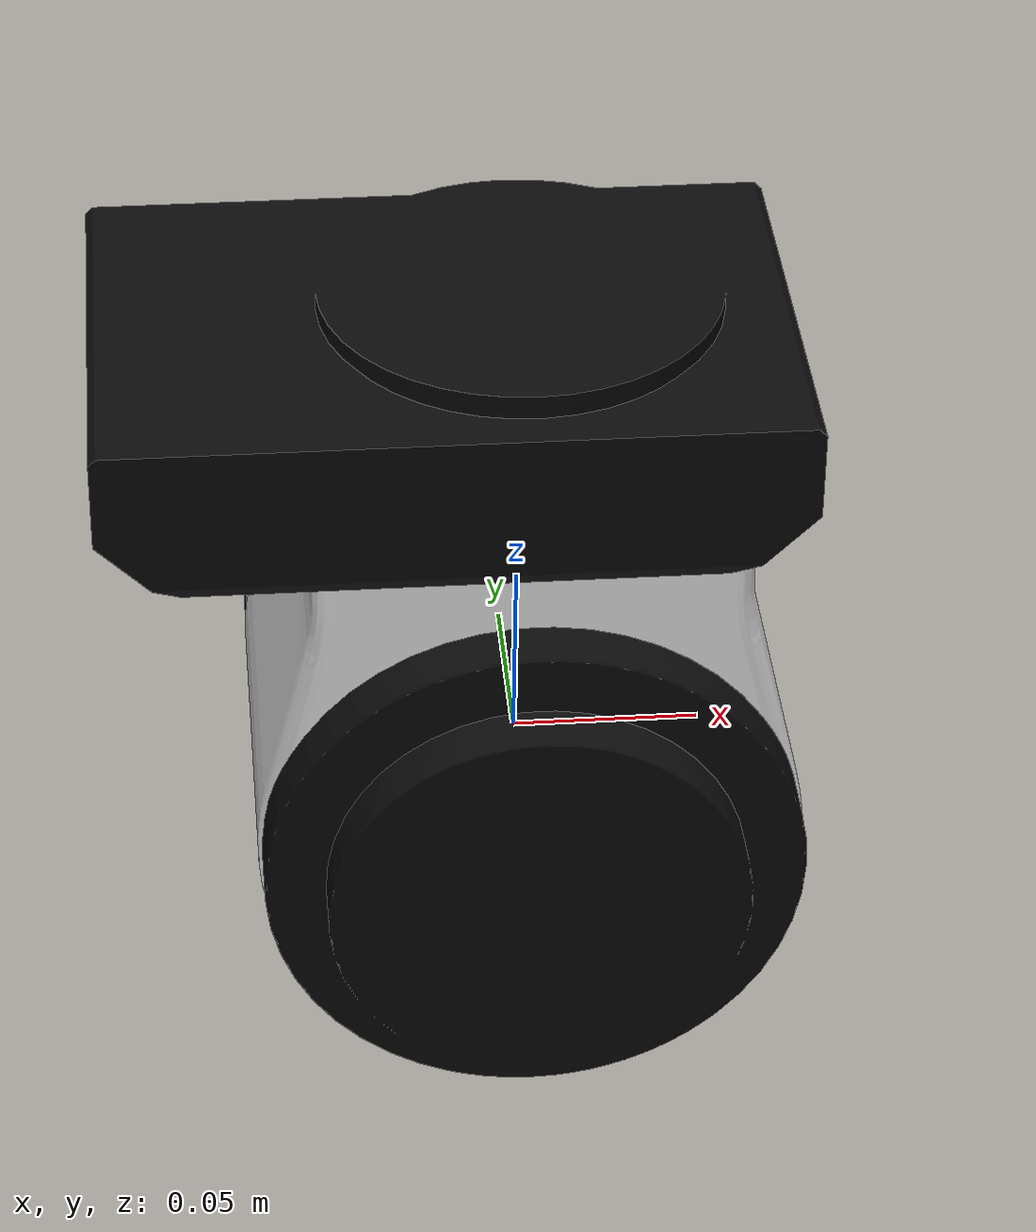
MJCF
<mujoco model="UB_LINK_HP">
  <default>
    <default class="visual">
      <geom group="2" type="mesh" contype="0" conaffinity="0"/>
    </default>
    <default class="collision">
      <geom group="3" type="mesh"/>
    </default>
  </default>
  <asset>
    <material name="10,10,10.004" specular="0.0" shininess="0.225" rgba="0.039216 0.039216 0.039216 1.000000"/>
    <material name="191,191,191.001" specular="0.0" shininess="0.225" rgba="0.749020 0.749020 0.749020 1.000000"/>
    <material name="254,254,255.001" specular="0.0" shininess="0.225" rgba="0.996078 0.996078 1.000000 1.000000"/>
    <mesh file="UB_LINK_HP_0.obj"/>
    <mesh file="UB_LINK_HP_1.obj"/>
    <mesh file="UB_LINK_HP_2.obj"/>
  </asset>
  <worldbody>
    <body name="UB_LINK_HP">
      <geom mesh="UB_LINK_HP_0" material="254,254,255.001" class="visual"/>
      <geom mesh="UB_LINK_HP_1" material="191,191,191.001" class="visual"/>
      <geom mesh="UB_LINK_HP_2" material="10,10,10.004" class="visual"/>
      <geom mesh="UB_LINK_HP_0" class="collision"/>
      <geom mesh="UB_LINK_HP_1" class="collision"/>
      <geom mesh="UB_LINK_HP_2" class="collision"/>
    </body>
  </worldbody>
</mujoco>
